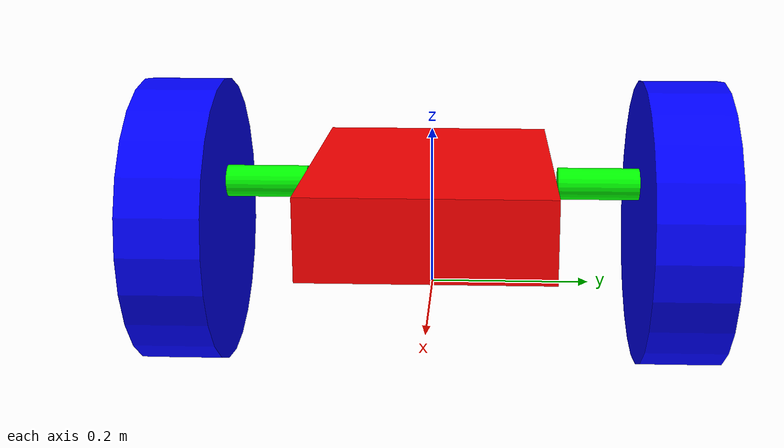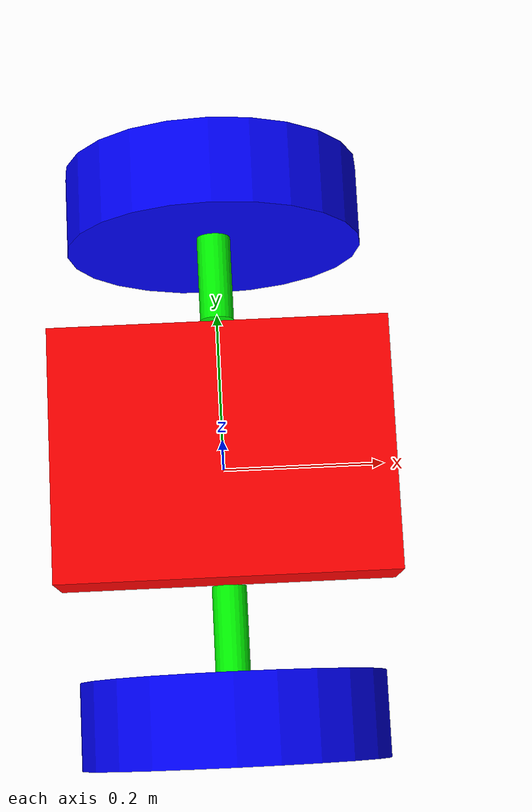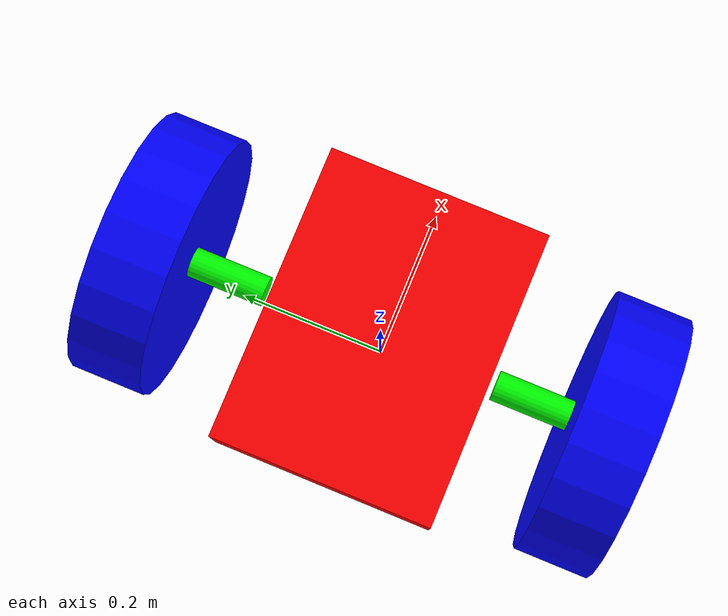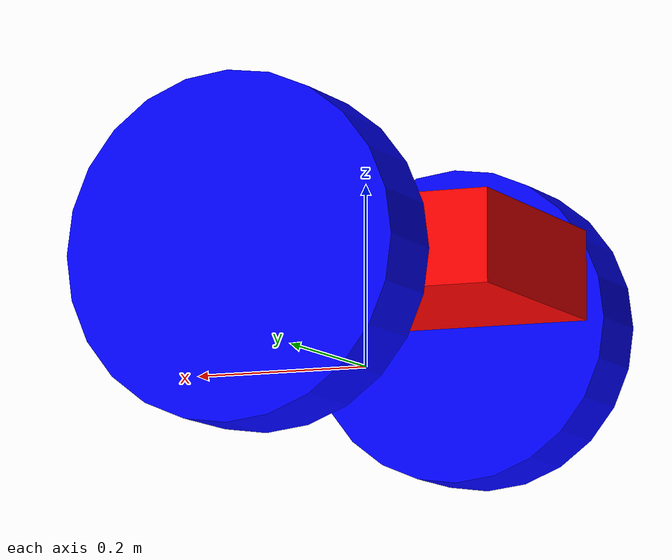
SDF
<?xml version="1.0" ?>
<sdf version="1.9">
  <model name="custom_self_balancing_robot">
    <plugin filename="gz-sim-diff-drive-system" name="gz::sim::systems::DiffDrive">
        <left_joint>left_rod_to_left_wheel</left_joint>
        <right_joint>right_rod_to_right_wheel</right_joint>
        <wheel_separation>0.62</wheel_separation>
        <wheel_radius>0.18</wheel_radius>
        <odom_publish_frequency>50</odom_publish_frequency>
        <topic>/cmd_vel</topic>
        <odom_topic>/odom</odom_topic>
        <tf_topic>/tf</tf_topic>
        <frame_id>odom</frame_id>
        <child_frame_id>chassis</child_frame_id>
    </plugin>
    <plugin
      filename="gz-sim-sensors-system"
      name="gz::sim::systems::Sensors">
      <render_engine>ogre2</render_engine>
    </plugin>
    <plugin filename="gz-sim-imu-system"
        name="gz::sim::systems::Imu">
    </plugin>

    <static>false</static>

    <link name="chassis">
      <sensor name="imu_sensor" type="imu">
        <always_on>1</always_on>
        <update_rate>1000</update_rate>
        <visualize>true</visualize>
        <topic>/imu</topic>
      </sensor>

      <pose>0 0 0.11 0 0 0</pose>
      <visual name="chassis_visual">
        <geometry>
          <box>
            <size>0.4 0.3 0.1</size>
          </box>
        </geometry>
        <material>
          <ambient>1 0 0 1</ambient>
          <diffuse>1 0 0 1</diffuse>
        </material>
      </visual>
      <collision name="chassis_collision">
        <geometry>
          <box>
            <size>0.4 0.3 0.1</size>
          </box>
        </geometry>
      </collision>
      <inertial>
        <mass>2.0</mass>
        <inertia>
          <ixx>0.05</ixx>
          <iyy>0.05</iyy>
          <izz>0.05</izz>
        </inertia>
      </inertial>
    </link>

    <link name="left_rod">
      <pose>0 0.253 0.13 1.5708 0 0</pose>
      <visual name="left_rod_visual">
        <geometry>
          <cylinder>
            <radius>0.02</radius>
            <length>0.19</length>
          </cylinder>
        </geometry>
        <material>
          <ambient>0 1 0 1</ambient>
          <diffuse>0 1 0 1</diffuse>
        </material>
      </visual>
      <collision name="left_rod_collision">
        <geometry>
          <cylinder>
            <radius>0.02</radius>
            <length>0.19</length>
          </cylinder>
        </geometry>
      </collision>
      <inertial>
        <mass>0.1</mass>
        <inertia>
          <ixx>0.001</ixx>
          <iyy>0.001</iyy>
          <izz>0.001</izz>
        </inertia>
      </inertial>
    </link>

    <link name="right_rod">
      <pose>0 -0.253 0.13 1.5708 0 0</pose>
      <visual name="right_rod_visual">
        <geometry>
          <cylinder>
            <radius>0.02</radius>
            <length>0.19</length>
          </cylinder>
        </geometry>
        <material>
          <ambient>0 1 0 1</ambient>
          <diffuse>0 1 0 1</diffuse>
        </material>
      </visual>
      <collision name="right_rod_collision">
        <geometry>
          <cylinder>
            <radius>0.02</radius>
            <length>0.19</length>
          </cylinder>
        </geometry>
      </collision>
      <inertial>
        <mass>0.1</mass>
        <inertia>
          <ixx>0.001</ixx>
          <iyy>0.001</iyy>
          <izz>0.001</izz>
        </inertia>
      </inertial>
    </link>

    <link name="left_wheel">
      <pose>0 0.31 0.08 -1.5708 0 0</pose>
      <visual name="left_wheel_visual">
        <geometry>
          <cylinder>
            <radius>0.18</radius>
            <length>0.1</length>
          </cylinder>
        </geometry>
        <material>
          <ambient>0 0 1 1</ambient>
          <diffuse>0 0 1 1</diffuse>
        </material>
      </visual>
      <collision name="left_wheel_collision">
        <geometry>
          <cylinder>
            <radius>0.18</radius>
            <length>0.1</length>
          </cylinder>
        </geometry>
      </collision>
      <inertial>
        <mass>0.3</mass>
        <inertia>
          <ixx>0.004</ixx>
          <iyy>0.004</iyy>
          <izz>0.004</izz>
        </inertia>
      </inertial>
    </link>

    <link name="support_rod">
      <pose>-0.20 0 0.05 0 0 0</pose>
      <inertial>
        <mass>0.001</mass>
        <inertia>
          <ixx>1e-6</ixx><iyy>1e-6</iyy><izz>1e-6</izz>
          <ixy>0</ixy><ixz>0</ixz><iyz>0</iyz>
        </inertia>
      </inertial>
      <collision name="collision">
        <geometry>
          <cylinder>
            <radius>0.01</radius>
            <length>0.16</length>
          </cylinder>
        </geometry>
      </collision>
      <visual name="visual">
        <geometry>
          <cylinder>
            <radius>0.01</radius>
            <length>0.16</length>
          </cylinder>
        </geometry>
        <material>
          <ambient>1 1 1 1</ambient>
          <diffuse>1 1 1 1</diffuse>
        </material>
        <transparency>1.0</transparency>
      </visual>
    </link>

    <link name="right_wheel">
      <pose>0 -0.31 0.08 -1.5708 0 0</pose>
      <visual name="right_wheel_visual">
        <geometry>
          <cylinder>
            <radius>0.18</radius>
            <length>0.1</length>
          </cylinder>
        </geometry>
        <material>
          <ambient>0 0 1 1</ambient>
          <diffuse>0 0 1 1</diffuse>
        </material>
      </visual>
      <collision name="right_wheel_collision">
        <geometry>
          <cylinder>
            <radius>0.18</radius>
            <length>0.1</length>
          </cylinder>
        </geometry>
      </collision>
      <inertial>
        <mass>0.3</mass>
        <inertia>
          <ixx>0.004</ixx>
          <iyy>0.004</iyy>
          <izz>0.004</izz>
        </inertia>
      </inertial>
    </link>
    <link name="support_rod_front">
      <pose>0.18 0 0.05 0 0 0</pose>
      <visual name="support_rod_front_visual">
        <geometry>
          <cylinder>
            <radius>0.01</radius>
            <length>0.16</length>
          </cylinder>
        </geometry>
        <material>
          <ambient>0 0 0 0</ambient>
          <diffuse>0 0 0 0</diffuse>
        </material>
        <transparency>1.0</transparency>
      </visual>
      <collision name="support_rod_front_collision">
        <geometry>
          <cylinder>
            <radius>0.01</radius>
            <length>0.16</length>
          </cylinder>
        </geometry>
      </collision>
      <inertial>
        <mass>0.001</mass>
        <inertia>
          <ixx>0.000001</ixx>
          <iyy>0.000001</iyy>
          <izz>0.000001</izz>
        </inertia>
      </inertial>
    </link>

    <link name="support_wheel">
      <pose>-0.20 0 -0.05 1.5708 0 0</pose> <!-- Slightly below the support rod -->
      <visual name="support_wheel_visual">
        <geometry>
          <cylinder>
            <radius>0.04</radius> <!-- Smaller than main wheels -->
            <length>0.02</length>
          </cylinder>
        </geometry>
        <material>
          <ambient>0 0 0 0</ambient>
          <diffuse>0 0 0 0</diffuse>
        </material>
        <transparency>1.0</transparency>
      </visual>
      <collision name="support_wheel_collision">
        <geometry>
          <cylinder>
            <radius>0.04</radius>
            <length>0.02</length>
          </cylinder>
        </geometry>
      </collision>
      <inertial>
        <mass>0.05</mass>
        <inertia>
          <ixx>0.0001</ixx>
          <iyy>0.0001</iyy>
          <izz>0.0001</izz>
        </inertia>
      </inertial>
    </link>
    <link name="support_wheel_front">
      <pose>0 0 -0.05 1.5708 0 0</pose>
      <visual name="support_wheel_front_visual">
        <geometry>
          <cylinder>
            <radius>0.04</radius>
            <length>0.02</length>
          </cylinder>
        </geometry>
        <material>
          <ambient>0 0 0 0</ambient>
          <diffuse>0 0 0 0</diffuse>
        </material>
        <transparency>1.0</transparency>
      </visual>
      <collision name="support_wheel_front_collision">
        <geometry>
          <cylinder>
            <radius>0.04</radius>
            <length>0.02</length>
          </cylinder>
        </geometry>
      </collision>
      <inertial>
        <mass>0.05</mass>
        <inertia>
          <ixx>0.0001</ixx>
          <iyy>0.0001</iyy>
          <izz>0.0001</izz>
        </inertia>
      </inertial>
    </link>

    <link name="lidar_link">
      <pose>0 0 0.13 0 0 0</pose>
      <sensor name="gpu_lidar" type="gpu_lidar">
        <pose>0 0 0 0 0 0</pose>
        <topic>/scan</topic>
        <update_rate>10</update_rate>
        <ray>
          <scan>
            <horizontal>
              <samples>640</samples>
              <resolution>1</resolution>
              <min_angle>-1.396263</min_angle>
              <max_angle>1.396263</max_angle>
            </horizontal>
            <vertical>
              <samples>1</samples>
              <resolution>0.01</resolution>
              <min_angle>0</min_angle>
              <max_angle>0</max_angle>
            </vertical>
          </scan>
          <range>
            <min>0.08</min>
            <max>150.0</max>
            <resolution>0.01</resolution>
          </range>
        </ray>
        <always_on>1</always_on>
        <visualize>true</visualize>
      </sensor>
    </link>

    <joint name="lidar_joint" type="fixed">
      <parent>chassis</parent>
      <child>lidar_link</child>
      <pose>0 0 0 0 0 0</pose>
    </joint>

    <joint name="chassis_to_left_rod" type="fixed">
      <parent>chassis</parent>
      <child>left_rod</child>
      <pose>0 0 0 0 0 0</pose>
    </joint>

    <joint name="chassis_to_right_rod" type="fixed">
      <parent>chassis</parent>
      <child>right_rod</child>
      <pose>0 0 0 0 0 0</pose>
    </joint>

    <joint name="left_rod_to_left_wheel" type="revolute">
      <parent>left_rod</parent>
      <child>left_wheel</child>
      <pose>0 0 0 0 0 0</pose>
      <axis>
        <xyz>0 0 1</xyz>
        <limit>
          <lower>-1000</lower>
          <upper>1000</upper>
          <effort>15</effort>
          <velocity>30</velocity>
        </limit>
        <dynamics>
          <damping>0.1</damping>
          <friction>0.1</friction>
        </dynamics>
      </axis>
    </joint>

    <joint name="right_rod_to_right_wheel" type="revolute">
      <parent>right_rod</parent>
      <child>right_wheel</child>
      <pose>0 0 0 0 0 0</pose>
      <axis>
        <xyz>0 0 1</xyz>
        <limit>
          <lower>-1000</lower>
          <upper>1000</upper>
          <effort>15</effort>
          <velocity>30</velocity>
        </limit>
        <dynamics>
          <damping>0.1</damping>
          <friction>0.1</friction>
        </dynamics>
      </axis>
    </joint>
    <joint name="support_joint" type="fixed">
      <parent>chassis</parent>
      <child>support_rod</child>
      <pose>-0.20 0 0.05 0 0 0</pose>
    </joint>
    <joint name="support_joint_front" type="fixed">
      <parent>chassis</parent>
      <child>support_rod_front</child>
      <pose>0.18 0 0.05 0 0 0</pose>
    </joint>
    <joint name="support_to_support_wheel" type="revolute">

      <parent>support_rod</parent>
      <child>support_wheel</child>
      <axis>
        <xyz>0 0 1</xyz>
      </axis>
    </joint>
    <joint name="support_to_support_wheel_front" type="revolute">

      <parent>support_rod_front</parent>
      <child>support_wheel_front</child>
      <axis>
        <xyz>0 0 1</xyz>
      </axis>
    </joint>

  </model>
</sdf>
